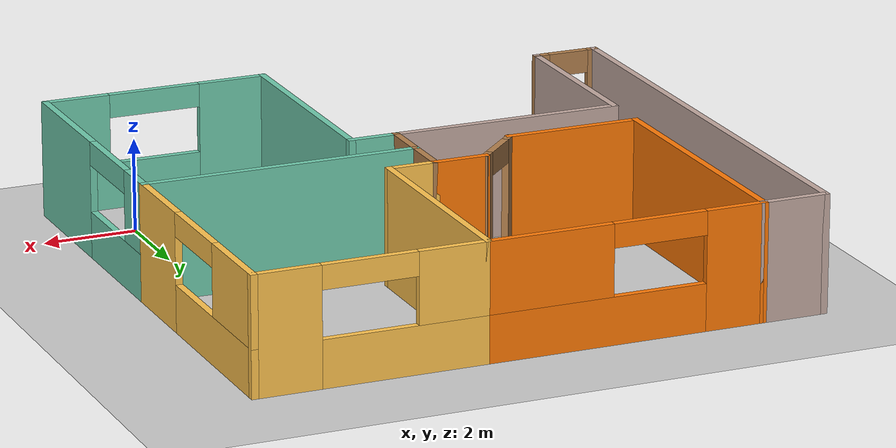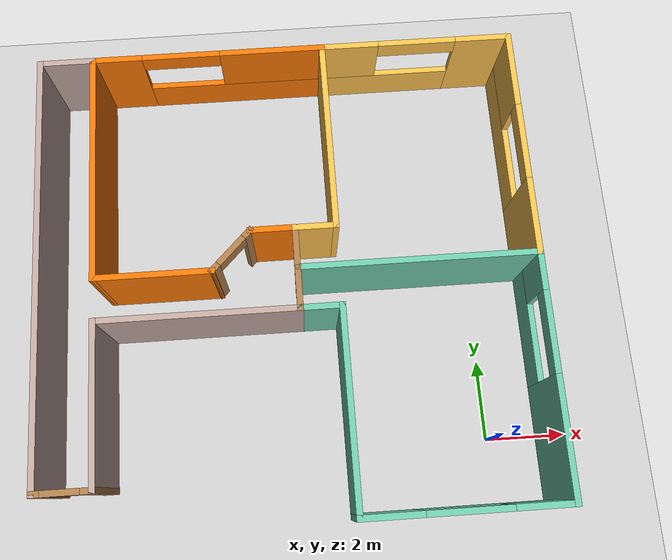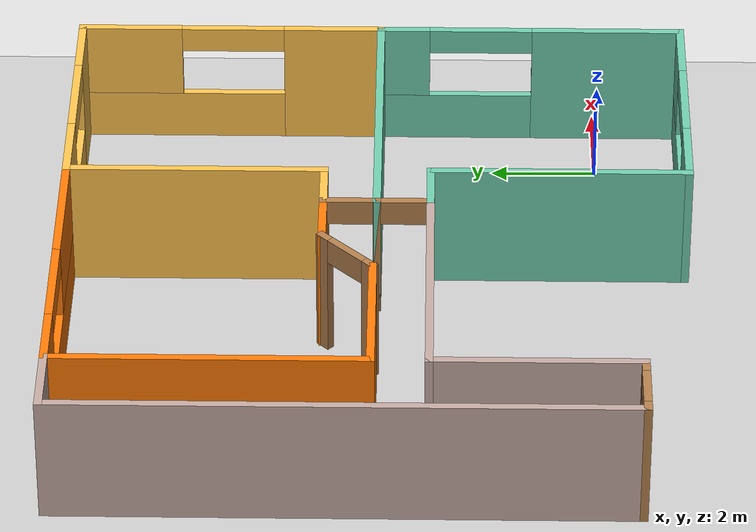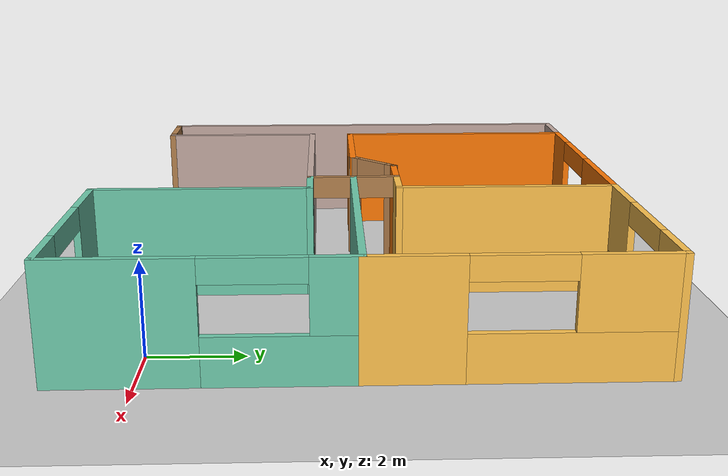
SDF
<sdf version="1.6">
 <world name="default">
  <model name="ground_plane">
   <static>1</static>
   <link name="link">
    <collision name="collision">
     <geometry><plane><normal>0 0 1</normal><size>100 100</size></plane></geometry>
     <surface><friction><ode><mu>100</mu><mu2>50</mu2></ode></friction></surface>
    </collision>
    <visual name="visual">
     <cast_shadows>0</cast_shadows>
     <geometry><plane><normal>0 0 1</normal><size>100 100</size></plane></geometry>
     <material>
      <script><uri>file://media/materials/scripts/gazebo.material</uri><name>Gazebo/Grey</name></script>
     </material>
    </visual>
   </link>
  </model>
  <model name="Apartment">
   <pose>-4.7201 4.20671 0 0 -0 0</pose>
   <link name="Wall_0">
    <collision name="Wall_0_Collision">
     <geometry><box><size>5.00001 0.15 2.5</size></box></geometry>
     <pose>0 0 1.25 0 -0 0</pose>
    </collision>
    <visual name="Wall_0_Visual">
     <pose>0 0 1.25 0 -0 0</pose>
     <geometry><box><size>5.00001 0.15 2.5</size></box></geometry>
     <material>
      <script><uri>file://media/materials/scripts/gazebo.material</uri><name>Gazebo/Grey</name></script>
      <ambient>0.435294 0.796078 0.67451 1</ambient>
     </material>
     <meta><layer>0</layer></meta>
    </visual>
    <pose>1.2025 -3.42753 0 0 -0 1.5708</pose>
   </link>
   <link name="Wall_12">
    <pose>3.6275 -5.85253 0 0 -0 0</pose>
    <visual name="Wall_12_Visual_0">
     <pose>-1.72856 0 1.25 0 -0 0</pose>
     <geometry><box><size>1.54289 0.15 2.5</size></box></geometry>
     <material>
      <script><uri>file://media/materials/scripts/gazebo.material</uri><name>Gazebo/Grey</name></script>
      <ambient>0.435294 0.796078 0.67451 1</ambient>
     </material>
     <meta><layer>0</layer></meta>
    </visual>
    <collision name="Wall_12_Collision_0">
     <geometry><box><size>1.54289 0.15 2.5</size></box></geometry>
     <pose>-1.72856 0 1.25 0 -0 0</pose>
    </collision>
    <visual name="Wall_12_Visual_1">
     <pose>0.771445 0 0.5 0 -0 0</pose>
     <geometry><box><size>3.45711 0.15 1</size></box></geometry>
     <material>
      <script><uri>file://media/materials/scripts/gazebo.material</uri><name>Gazebo/Grey</name></script>
      <ambient>0.435294 0.796078 0.67451 1</ambient>
     </material>
     <meta><layer>0</layer></meta>
    </visual>
    <collision name="Wall_12_Collision_1">
     <geometry><box><size>3.45711 0.15 1</size></box></geometry>
     <pose>0.771445 0 0.5 0 -0 0</pose>
    </collision>
    <visual name="Wall_12_Visual_2">
     <pose>1.77144 0 1.75 0 -0 0</pose>
     <geometry><box><size>1.45711 0.15 1.5</size></box></geometry>
     <material>
      <script><uri>file://media/materials/scripts/gazebo.material</uri><name>Gazebo/Grey</name></script>
      <ambient>0.435294 0.796078 0.67451 1</ambient>
     </material>
     <meta><layer>0</layer></meta>
    </visual>
    <collision name="Wall_12_Collision_2">
     <geometry><box><size>1.45711 0.15 1.5</size></box></geometry>
     <pose>1.77144 0 1.75 0 -0 0</pose>
    </collision>
    <visual name="Wall_12_Visual_3">
     <pose>0.04289 0 2.25 0 -0 0</pose>
     <geometry><box><size>2 0.15 0.5</size></box></geometry>
     <material>
      <script><uri>file://media/materials/scripts/gazebo.material</uri><name>Gazebo/Grey</name></script>
      <ambient>0.435294 0.796078 0.67451 1</ambient>
     </material>
     <meta><layer>0</layer></meta>
    </visual>
    <collision name="Wall_12_Collision_3">
     <geometry><box><size>2 0.15 0.5</size></box></geometry>
     <pose>0.04289 0 2.25 0 -0 0</pose>
    </collision>
   </link>
   <link name="Wall_13">
    <pose>6.0525 -2.92753 0 0 -0 1.5708</pose>
    <visual name="Wall_13_Visual_0">
     <pose>-1.5166 0 1.25 0 -0 0</pose>
     <geometry><box><size>2.9668 0.15 2.5</size></box></geometry>
     <material>
      <script><uri>file://media/materials/scripts/gazebo.material</uri><name>Gazebo/Grey</name></script>
      <ambient>0.435294 0.796078 0.67451 1</ambient>
     </material>
     <meta><layer>0</layer></meta>
    </visual>
    <collision name="Wall_13_Collision_0">
     <geometry><box><size>2.9668 0.15 2.5</size></box></geometry>
     <pose>-1.5166 0 1.25 0 -0 0</pose>
    </collision>
    <visual name="Wall_13_Visual_1">
     <pose>1.4834 0 0.5 0 -0 0</pose>
     <geometry><box><size>3.0332 0.15 1</size></box></geometry>
     <material>
      <script><uri>file://media/materials/scripts/gazebo.material</uri><name>Gazebo/Grey</name></script>
      <ambient>0.435294 0.796078 0.67451 1</ambient>
     </material>
     <meta><layer>0</layer></meta>
    </visual>
    <collision name="Wall_13_Collision_1">
     <geometry><box><size>3.0332 0.15 1</size></box></geometry>
     <pose>1.4834 0 0.5 0 -0 0</pose>
    </collision>
    <visual name="Wall_13_Visual_2">
     <pose>2.4834 0 1.75 0 -0 0</pose>
     <geometry><box><size>1.0332 0.15 1.5</size></box></geometry>
     <material>
      <script><uri>file://media/materials/scripts/gazebo.material</uri><name>Gazebo/Grey</name></script>
      <ambient>0.435294 0.796078 0.67451 1</ambient>
     </material>
     <meta><layer>0</layer></meta>
    </visual>
    <collision name="Wall_13_Collision_2">
     <geometry><box><size>1.0332 0.15 1.5</size></box></geometry>
     <pose>2.4834 0 1.75 0 -0 0</pose>
    </collision>
    <visual name="Wall_13_Visual_3">
     <pose>0.966804 0 2.25 0 -0 0</pose>
     <geometry><box><size>2 0.15 0.5</size></box></geometry>
     <material>
      <script><uri>file://media/materials/scripts/gazebo.material</uri><name>Gazebo/Grey</name></script>
      <ambient>0.435294 0.796078 0.67451 1</ambient>
     </material>
     <meta><layer>0</layer></meta>
    </visual>
    <collision name="Wall_13_Collision_3">
     <geometry><box><size>2 0.15 0.5</size></box></geometry>
     <pose>0.966804 0 2.25 0 -0 0</pose>
    </collision>
   </link>
   <link name="Wall_14">
    <collision name="Wall_14_Collision">
     <geometry><box><size>6 0.15 2.5</size></box></geometry>
     <pose>0 0 1.25 0 -0 0</pose>
    </collision>
    <visual name="Wall_14_Visual">
     <pose>0 0 1.25 0 -0 0</pose>
     <geometry><box><size>6 0.15 2.5</size></box></geometry>
     <material>
      <script><uri>file://media/materials/scripts/gazebo.material</uri><name>Gazebo/Grey</name></script>
      <ambient>0.435294 0.796078 0.67451 1</ambient>
     </material>
     <meta><layer>0</layer></meta>
    </visual>
    <pose>3.1275 -0.002528 0 0 -0 3.14159</pose>
   </link>
   <link name="Wall_16">
    <collision name="Wall_16_Collision">
     <geometry><box><size>1.15 0.15 2.5</size></box></geometry>
     <pose>0 0 1.25 0 -0 0</pose>
    </collision>
    <visual name="Wall_16_Visual">
     <pose>0 0 1.25 0 -0 0</pose>
     <geometry><box><size>1.15 0.15 2.5</size></box></geometry>
     <material>
      <script><uri>file://media/materials/scripts/gazebo.material</uri><name>Gazebo/Grey</name></script>
      <ambient>0.435294 0.796078 0.67451 1</ambient>
     </material>
     <meta><layer>0</layer></meta>
    </visual>
    <pose>0.702501 -1.00253 0 0 -0 3.14159</pose>
   </link>
   <link name="Wall_18">
    <pose>0.202501 -0.502528 0 0 -0 1.5708</pose>
    <visual name="Wall_18_Visual_0">
     <pose>-0.519208 0 1.25 0 -0 0</pose>
     <geometry><box><size>0.111583 0.15 2.5</size></box></geometry>
     <material>
      <script><uri>file://media/materials/scripts/gazebo.material</uri><name>Gazebo/Wood</name></script>
      <ambient>1 1 1 1</ambient>
     </material>
     <meta><layer>0</layer></meta>
    </visual>
    <collision name="Wall_18_Collision_0">
     <geometry><box><size>0.111583 0.15 2.5</size></box></geometry>
     <pose>-0.519208 0 1.25 0 -0 0</pose>
    </collision>
    <visual name="Wall_18_Visual_1">
     <pose>0.505792 0 1.25 0 -0 0</pose>
     <geometry><box><size>0.138417 0.15 2.5</size></box></geometry>
     <material>
      <script><uri>file://media/materials/scripts/gazebo.material</uri><name>Gazebo/Wood</name></script>
      <ambient>1 1 1 1</ambient>
     </material>
     <meta><layer>0</layer></meta>
    </visual>
    <collision name="Wall_18_Collision_1">
     <geometry><box><size>0.138417 0.15 2.5</size></box></geometry>
     <pose>0.505792 0 1.25 0 -0 0</pose>
    </collision>
    <visual name="Wall_18_Visual_2">
     <pose>-0.013417 0 2.25 0 -0 0</pose>
     <geometry><box><size>0.9 0.15 0.5</size></box></geometry>
     <material>
      <script><uri>file://media/materials/scripts/gazebo.material</uri><name>Gazebo/Wood</name></script>
      <ambient>1 1 1 1</ambient>
     </material>
     <meta><layer>0</layer></meta>
    </visual>
    <collision name="Wall_18_Collision_2">
     <geometry><box><size>0.9 0.15 0.5</size></box></geometry>
     <pose>-0.013417 0 2.25 0 -0 0</pose>
    </collision>
   </link>
   <link name="Wall_21">
    <pose>6.0525 2.92247 0 0 -0 1.5708</pose>
    <visual name="Wall_21_Visual_0">
     <pose>-2.01035 0 1.25 0 -0 0</pose>
     <geometry><box><size>1.9793 0.15 2.5</size></box></geometry>
     <material>
      <script><uri>file://media/materials/scripts/gazebo.material</uri><name>Gazebo/Grey</name></script>
      <ambient>1 0.764706 0.305882 1</ambient>
     </material>
     <meta><layer>0</layer></meta>
    </visual>
    <collision name="Wall_21_Collision_0">
     <geometry><box><size>1.9793 0.15 2.5</size></box></geometry>
     <pose>-2.01035 0 1.25 0 -0 0</pose>
    </collision>
    <visual name="Wall_21_Visual_1">
     <pose>0.989651 0 0.5 0 -0 0</pose>
     <geometry><box><size>4.0207 0.15 1</size></box></geometry>
     <material>
      <script><uri>file://media/materials/scripts/gazebo.material</uri><name>Gazebo/Grey</name></script>
      <ambient>1 0.764706 0.305882 1</ambient>
     </material>
     <meta><layer>0</layer></meta>
    </visual>
    <collision name="Wall_21_Collision_1">
     <geometry><box><size>4.0207 0.15 1</size></box></geometry>
     <pose>0.989651 0 0.5 0 -0 0</pose>
    </collision>
    <visual name="Wall_21_Visual_2">
     <pose>1.98965 0 1.75 0 -0 0</pose>
     <geometry><box><size>2.0207 0.15 1.5</size></box></geometry>
     <material>
      <script><uri>file://media/materials/scripts/gazebo.material</uri><name>Gazebo/Grey</name></script>
      <ambient>1 0.764706 0.305882 1</ambient>
     </material>
     <meta><layer>0</layer></meta>
    </visual>
    <collision name="Wall_21_Collision_2">
     <geometry><box><size>2.0207 0.15 1.5</size></box></geometry>
     <pose>1.98965 0 1.75 0 -0 0</pose>
    </collision>
    <visual name="Wall_21_Visual_3">
     <pose>-0.020698 0 2.25 0 -0 0</pose>
     <geometry><box><size>2 0.15 0.5</size></box></geometry>
     <material>
      <script><uri>file://media/materials/scripts/gazebo.material</uri><name>Gazebo/Grey</name></script>
      <ambient>1 0.764706 0.305882 1</ambient>
     </material>
     <meta><layer>0</layer></meta>
    </visual>
    <collision name="Wall_21_Collision_3">
     <geometry><box><size>2 0.15 0.5</size></box></geometry>
     <pose>-0.020698 0 2.25 0 -0 0</pose>
    </collision>
   </link>
   <link name="Wall_23">
    <pose>3.6275 5.84747 0 0 -0 3.14159</pose>
    <visual name="Wall_23_Visual_0">
     <pose>-1.7709 0 1.25 0 -0 0</pose>
     <geometry><box><size>1.45819 0.15 2.5</size></box></geometry>
     <material>
      <script><uri>file://media/materials/scripts/gazebo.material</uri><name>Gazebo/Grey</name></script>
      <ambient>1 0.764706 0.305882 1</ambient>
     </material>
     <meta><layer>0</layer></meta>
    </visual>
    <collision name="Wall_23_Collision_0">
     <geometry><box><size>1.45819 0.15 2.5</size></box></geometry>
     <pose>-1.7709 0 1.25 0 -0 0</pose>
    </collision>
    <visual name="Wall_23_Visual_1">
     <pose>0.729095 0 0.5 0 -0 0</pose>
     <geometry><box><size>3.54181 0.15 1</size></box></geometry>
     <material>
      <script><uri>file://media/materials/scripts/gazebo.material</uri><name>Gazebo/Grey</name></script>
      <ambient>1 0.764706 0.305882 1</ambient>
     </material>
     <meta><layer>0</layer></meta>
    </visual>
    <collision name="Wall_23_Collision_1">
     <geometry><box><size>3.54181 0.15 1</size></box></geometry>
     <pose>0.729095 0 0.5 0 -0 0</pose>
    </collision>
    <visual name="Wall_23_Visual_2">
     <pose>1.7291 0 1.75 0 -0 0</pose>
     <geometry><box><size>1.54181 0.15 1.5</size></box></geometry>
     <material>
      <script><uri>file://media/materials/scripts/gazebo.material</uri><name>Gazebo/Grey</name></script>
      <ambient>1 0.764706 0.305882 1</ambient>
     </material>
     <meta><layer>0</layer></meta>
    </visual>
    <collision name="Wall_23_Collision_2">
     <geometry><box><size>1.54181 0.15 1.5</size></box></geometry>
     <pose>1.7291 0 1.75 0 -0 0</pose>
    </collision>
    <visual name="Wall_23_Visual_3">
     <pose>-0.041811 0 2.25 0 -0 0</pose>
     <geometry><box><size>2 0.15 0.5</size></box></geometry>
     <material>
      <script><uri>file://media/materials/scripts/gazebo.material</uri><name>Gazebo/Grey</name></script>
      <ambient>1 0.764706 0.305882 1</ambient>
     </material>
     <meta><layer>0</layer></meta>
    </visual>
    <collision name="Wall_23_Collision_3">
     <geometry><box><size>2 0.15 0.5</size></box></geometry>
     <pose>-0.041811 0 2.25 0 -0 0</pose>
    </collision>
   </link>
   <link name="Wall_24">
    <collision name="Wall_24_Collision">
     <geometry><box><size>5 0.15 2.5</size></box></geometry>
     <pose>0 0 1.25 0 -0 0</pose>
    </collision>
    <visual name="Wall_24_Visual">
     <pose>0 0 1.25 0 -0 0</pose>
     <geometry><box><size>5 0.15 2.5</size></box></geometry>
     <material>
      <script><uri>file://media/materials/scripts/gazebo.material</uri><name>Gazebo/Grey</name></script>
      <ambient>1 0.764706 0.305882 1</ambient>
     </material>
     <meta><layer>0</layer></meta>
    </visual>
    <pose>1.2025 3.42247 0 0 0 -1.5708</pose>
   </link>
   <link name="Wall_25">
    <collision name="Wall_25_Collision">
     <geometry><box><size>1.15 0.15 2.5</size></box></geometry>
     <pose>0 0 1.25 0 -0 0</pose>
    </collision>
    <visual name="Wall_25_Visual">
     <pose>0 0 1.25 0 -0 0</pose>
     <geometry><box><size>1.15 0.15 2.5</size></box></geometry>
     <material>
      <script><uri>file://media/materials/scripts/gazebo.material</uri><name>Gazebo/Grey</name></script>
      <ambient>1 0.764706 0.305882 1</ambient>
     </material>
     <meta><layer>0</layer></meta>
    </visual>
    <pose>0.702501 0.997472 0 0 -0 3.14159</pose>
   </link>
   <link name="Wall_27">
    <pose>0.202501 0.497472 0 0 0 -1.5708</pose>
    <visual name="Wall_27_Visual_0">
     <pose>-0.512016 0 1.25 0 -0 0</pose>
     <geometry><box><size>0.125968 0.15 2.5</size></box></geometry>
     <material>
      <script><uri>file://media/materials/scripts/gazebo.material</uri><name>Gazebo/Wood</name></script>
      <ambient>1 1 1 1</ambient>
     </material>
     <meta><layer>0</layer></meta>
    </visual>
    <collision name="Wall_27_Collision_0">
     <geometry><box><size>0.125968 0.15 2.5</size></box></geometry>
     <pose>-0.512016 0 1.25 0 -0 0</pose>
    </collision>
    <visual name="Wall_27_Visual_1">
     <pose>0.512984 0 1.25 0 -0 0</pose>
     <geometry><box><size>0.124032 0.15 2.5</size></box></geometry>
     <material>
      <script><uri>file://media/materials/scripts/gazebo.material</uri><name>Gazebo/Wood</name></script>
      <ambient>1 1 1 1</ambient>
     </material>
     <meta><layer>0</layer></meta>
    </visual>
    <collision name="Wall_27_Collision_1">
     <geometry><box><size>0.124032 0.15 2.5</size></box></geometry>
     <pose>0.512984 0 1.25 0 -0 0</pose>
    </collision>
    <visual name="Wall_27_Visual_2">
     <pose>0.000968 0 2.25 0 -0 0</pose>
     <geometry><box><size>0.9 0.15 0.5</size></box></geometry>
     <material>
      <script><uri>file://media/materials/scripts/gazebo.material</uri><name>Gazebo/Wood</name></script>
      <ambient>1 1 1 1</ambient>
     </material>
     <meta><layer>0</layer></meta>
    </visual>
    <collision name="Wall_27_Collision_2">
     <geometry><box><size>0.9 0.15 0.5</size></box></geometry>
     <pose>0.000968 0 2.25 0 -0 0</pose>
    </collision>
   </link>
   <link name="Wall_40">
    <collision name="Wall_40_Collision">
     <geometry><box><size>1.25 0.15 2.5</size></box></geometry>
     <pose>0 0 1.25 0 -0 0</pose>
    </collision>
    <visual name="Wall_40_Visual">
     <pose>0 0 1.25 0 -0 0</pose>
     <geometry><box><size>1.25 0.15 2.5</size></box></geometry>
     <material>
      <script><uri>file://media/materials/scripts/gazebo.material</uri><name>Gazebo/Grey</name></script>
      <ambient>0.996078 0.47451 0.0196078 1</ambient>
     </material>
     <meta><layer>0</layer></meta>
    </visual>
    <pose>-0.3475 0.997472 0 0 -0 3.14159</pose>
   </link>
   <link name="Wall_41">
    <pose>-1.3748 0.520175 0 0 0 -2.35619</pose>
    <visual name="Wall_41_Visual_0">
     <pose>-0.599458 0 1.25 0 -0 0</pose>
     <geometry><box><size>0.301084 0.15 2.5</size></box></geometry>
     <material>
      <script><uri>file://media/materials/scripts/gazebo.material</uri><name>Gazebo/Wood</name></script>
      <ambient>1 1 1 1</ambient>
     </material>
     <meta><layer>0</layer></meta>
    </visual>
    <collision name="Wall_41_Collision_0">
     <geometry><box><size>0.301084 0.15 2.5</size></box></geometry>
     <pose>-0.599458 0 1.25 0 -0 0</pose>
    </collision>
    <visual name="Wall_41_Visual_1">
     <pose>0.600542 0 1.25 0 -0 0</pose>
     <geometry><box><size>0.298916 0.15 2.5</size></box></geometry>
     <material>
      <script><uri>file://media/materials/scripts/gazebo.material</uri><name>Gazebo/Wood</name></script>
      <ambient>1 1 1 1</ambient>
     </material>
     <meta><layer>0</layer></meta>
    </visual>
    <collision name="Wall_41_Collision_1">
     <geometry><box><size>0.298916 0.15 2.5</size></box></geometry>
     <pose>0.600542 0 1.25 0 -0 0</pose>
    </collision>
    <visual name="Wall_41_Visual_2">
     <pose>0.001084 0 2.25 0 -0 0</pose>
     <geometry><box><size>0.9 0.15 0.5</size></box></geometry>
     <material>
      <script><uri>file://media/materials/scripts/gazebo.material</uri><name>Gazebo/Wood</name></script>
      <ambient>1 1 1 1</ambient>
     </material>
     <meta><layer>0</layer></meta>
    </visual>
    <collision name="Wall_41_Collision_2">
     <geometry><box><size>0.9 0.15 0.5</size></box></geometry>
     <pose>0.001084 0 2.25 0 -0 0</pose>
    </collision>
   </link>
   <link name="Wall_42">
    <collision name="Wall_42_Collision">
     <geometry><box><size>3 0.15 2.5</size></box></geometry>
     <pose>0 0 1.25 0 -0 0</pose>
    </collision>
    <visual name="Wall_42_Visual">
     <pose>0 0 1.25 0 -0 0</pose>
     <geometry><box><size>3 0.15 2.5</size></box></geometry>
     <material>
      <script><uri>file://media/materials/scripts/gazebo.material</uri><name>Gazebo/Grey</name></script>
      <ambient>0.996078 0.47451 0.0196078 1</ambient>
     </material>
     <meta><layer>0</layer></meta>
    </visual>
    <pose>-3.2773 0.042675 0 0 0 -3.14145</pose>
   </link>
   <link name="Wall_44">
    <collision name="Wall_44_Collision">
     <geometry><box><size>5.96 0.15 2.5</size></box></geometry>
     <pose>0 0 1.25 0 -0 0</pose>
    </collision>
    <visual name="Wall_44_Visual">
     <pose>0 0 1.25 0 -0 0</pose>
     <geometry><box><size>5.96 0.15 2.5</size></box></geometry>
     <material>
      <script><uri>file://media/materials/scripts/gazebo.material</uri><name>Gazebo/Grey</name></script>
      <ambient>0.996078 0.47451 0.0196078 1</ambient>
     </material>
     <meta><layer>0</layer></meta>
    </visual>
    <pose>-4.7025 2.94747 0 0 -0 1.5708</pose>
   </link>
   <link name="Wall_46">
    <pose>-1.75 5.84997 0 0 0 -0.000847</pose>
    <visual name="Wall_46_Visual_0">
     <pose>-2.36135 0 1.25 0 -0 0</pose>
     <geometry><box><size>1.33231 0.15 2.5</size></box></geometry>
     <material>
      <script><uri>file://media/materials/scripts/gazebo.material</uri><name>Gazebo/Grey</name></script>
      <ambient>0.996078 0.47451 0.0196078 1</ambient>
     </material>
     <meta><layer>0</layer></meta>
    </visual>
    <collision name="Wall_46_Collision_0">
     <geometry><box><size>1.33231 0.15 2.5</size></box></geometry>
     <pose>-2.36135 0 1.25 0 -0 0</pose>
    </collision>
    <visual name="Wall_46_Visual_1">
     <pose>0.666153 0 0.5 0 -0 0</pose>
     <geometry><box><size>4.7227 0.15 1</size></box></geometry>
     <material>
      <script><uri>file://media/materials/scripts/gazebo.material</uri><name>Gazebo/Grey</name></script>
      <ambient>0.996078 0.47451 0.0196078 1</ambient>
     </material>
     <meta><layer>0</layer></meta>
    </visual>
    <collision name="Wall_46_Collision_1">
     <geometry><box><size>4.7227 0.15 1</size></box></geometry>
     <pose>0.666153 0 0.5 0 -0 0</pose>
    </collision>
    <visual name="Wall_46_Visual_2">
     <pose>1.66615 0 1.75 0 -0 0</pose>
     <geometry><box><size>2.7227 0.15 1.5</size></box></geometry>
     <material>
      <script><uri>file://media/materials/scripts/gazebo.material</uri><name>Gazebo/Grey</name></script>
      <ambient>0.996078 0.47451 0.0196078 1</ambient>
     </material>
     <meta><layer>0</layer></meta>
    </visual>
    <collision name="Wall_46_Collision_2">
     <geometry><box><size>2.7227 0.15 1.5</size></box></geometry>
     <pose>1.66615 0 1.75 0 -0 0</pose>
    </collision>
    <visual name="Wall_46_Visual_3">
     <pose>-0.695195 0 2.25 0 -0 0</pose>
     <geometry><box><size>2 0.15 0.5</size></box></geometry>
     <material>
      <script><uri>file://media/materials/scripts/gazebo.material</uri><name>Gazebo/Grey</name></script>
      <ambient>0.996078 0.47451 0.0196078 1</ambient>
     </material>
     <meta><layer>0</layer></meta>
    </visual>
    <collision name="Wall_46_Collision_3">
     <geometry><box><size>2 0.15 0.5</size></box></geometry>
     <pose>-0.695195 0 2.25 0 -0 0</pose>
    </collision>
   </link>
   <link name="Wall_48">
    <collision name="Wall_48_Collision">
     <geometry><box><size>5.055 0.15 2.5</size></box></geometry>
     <pose>0 0 1.25 0 -0 0</pose>
    </collision>
    <visual name="Wall_48_Visual">
     <pose>0 0 1.25 0 -0 0</pose>
     <geometry><box><size>5.055 0.15 2.5</size></box></geometry>
     <material>
      <script><uri>file://media/materials/scripts/gazebo.material</uri><name>Gazebo/Grey</name></script>
      <ambient>0.760784 0.662745 0.627451 1</ambient>
     </material>
     <meta><layer>0</layer></meta>
    </visual>
    <pose>-2.25 -1.00253 0 0 -0 3.14159</pose>
   </link>
   <link name="Wall_50">
    <collision name="Wall_50_Collision">
     <geometry><box><size>4 0.15 2.5</size></box></geometry>
     <pose>0 0 1.25 0 -0 0</pose>
    </collision>
    <visual name="Wall_50_Visual">
     <pose>0 0 1.25 0 -0 0</pose>
     <geometry><box><size>4 0.15 2.5</size></box></geometry>
     <material>
      <script><uri>file://media/materials/scripts/gazebo.material</uri><name>Gazebo/Grey</name></script>
      <ambient>0.760784 0.662745 0.627451 1</ambient>
     </material>
     <meta><layer>0</layer></meta>
    </visual>
    <pose>-4.7025 -2.92753 0 0 0 -1.5708</pose>
   </link>
   <link name="Wall_52">
    <pose>-5.3775 -4.85253 0 0 -0 3.14159</pose>
    <visual name="Wall_52_Visual_0">
     <pose>-0.579208 0 1.25 0 -0 0</pose>
     <geometry><box><size>0.341584 0.15 2.5</size></box></geometry>
     <material>
      <script><uri>file://media/materials/scripts/gazebo.material</uri><name>Gazebo/Wood</name></script>
      <ambient>1 1 1 1</ambient>
     </material>
     <meta><layer>0</layer></meta>
    </visual>
    <collision name="Wall_52_Collision_0">
     <geometry><box><size>0.341584 0.15 2.5</size></box></geometry>
     <pose>-0.579208 0 1.25 0 -0 0</pose>
    </collision>
    <visual name="Wall_52_Visual_1">
     <pose>0.620792 0 1.25 0 -0 0</pose>
     <geometry><box><size>0.258416 0.15 2.5</size></box></geometry>
     <material>
      <script><uri>file://media/materials/scripts/gazebo.material</uri><name>Gazebo/Wood</name></script>
      <ambient>1 1 1 1</ambient>
     </material>
     <meta><layer>0</layer></meta>
    </visual>
    <collision name="Wall_52_Collision_1">
     <geometry><box><size>0.258416 0.15 2.5</size></box></geometry>
     <pose>0.620792 0 1.25 0 -0 0</pose>
    </collision>
    <visual name="Wall_52_Visual_2">
     <pose>0.041584 0 2.25 0 -0 0</pose>
     <geometry><box><size>0.9 0.15 0.5</size></box></geometry>
     <material>
      <script><uri>file://media/materials/scripts/gazebo.material</uri><name>Gazebo/Wood</name></script>
      <ambient>1 1 1 1</ambient>
     </material>
     <meta><layer>0</layer></meta>
    </visual>
    <collision name="Wall_52_Collision_2">
     <geometry><box><size>0.9 0.15 0.5</size></box></geometry>
     <pose>0.041584 0 2.25 0 -0 0</pose>
    </collision>
   </link>
   <link name="Wall_54">
    <collision name="Wall_54_Collision">
     <geometry><box><size>10.855 0.15 2.5</size></box></geometry>
     <pose>0 0 1.25 0 -0 0</pose>
    </collision>
    <visual name="Wall_54_Visual">
     <pose>0 0 1.25 0 -0 0</pose>
     <geometry><box><size>10.855 0.15 2.5</size></box></geometry>
     <material>
      <script><uri>file://media/materials/scripts/gazebo.material</uri><name>Gazebo/Grey</name></script>
      <ambient>0.760784 0.662745 0.627451 1</ambient>
     </material>
     <meta><layer>0</layer></meta>
    </visual>
    <pose>-6.0525 0.499972 0 0 -0 1.5708</pose>
   </link>
   <link name="Wall_56">
    <collision name="Wall_56_Collision">
     <geometry><box><size>1.5 0.15 2.5</size></box></geometry>
     <pose>0 0 1.25 0 -0 0</pose>
    </collision>
    <visual name="Wall_56_Visual">
     <pose>0 0 1.25 0 -0 0</pose>
     <geometry><box><size>1.5 0.15 2.5</size></box></geometry>
     <material>
      <script><uri>file://media/materials/scripts/gazebo.material</uri><name>Gazebo/Grey</name></script>
      <ambient>0.760784 0.662745 0.627451 1</ambient>
     </material>
     <meta><layer>0</layer></meta>
    </visual>
    <pose>-5.3775 5.85247 0 0 -0 0</pose>
   </link>
   <static>1</static>
  </model>
 </world>
</sdf>
